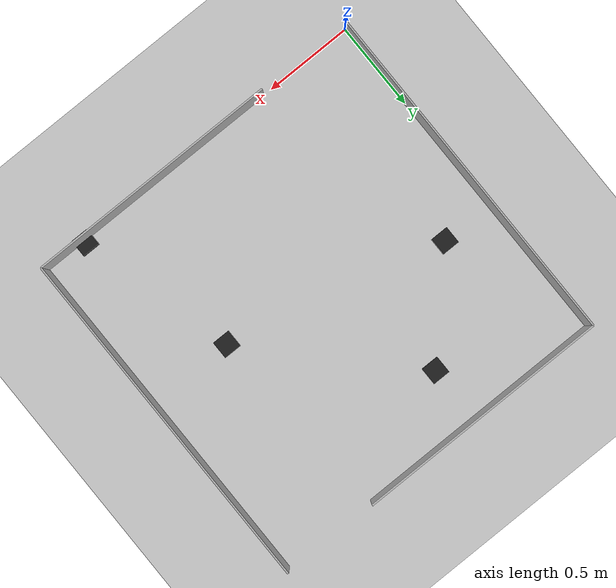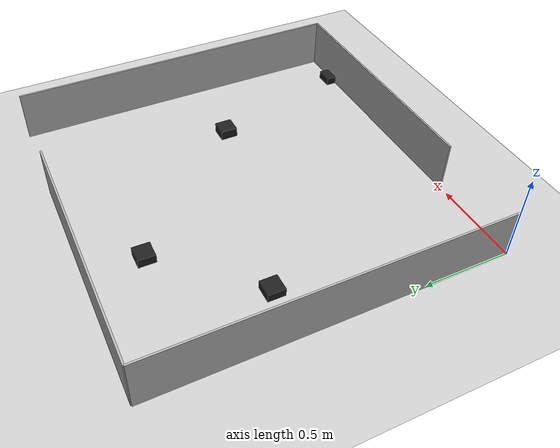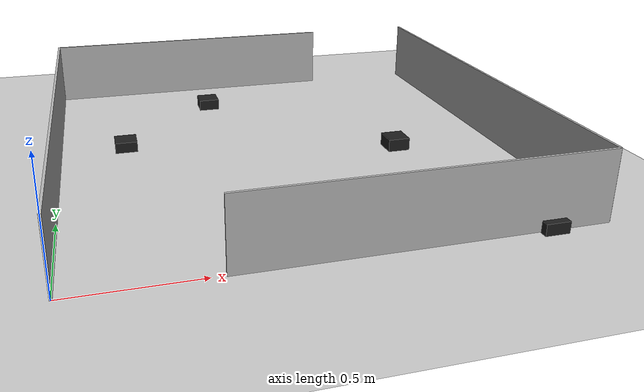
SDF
<sdf version="1.5">
 <world name="scenario_2_world">
  <include><uri>model://sun</uri></include>
  <include><uri>model://ground_plane</uri></include>
  <model name="wall_west"><include><uri>model://wall_1</uri></include></model>
  <model name="wall_east"><include><uri>model://wall_2</uri></include></model>
  <model name="wall_south"><include><uri>model://wall_3</uri></include></model>
  <model name="wall_north"><include><uri>model://wall_4</uri></include></model>
  <model name="obstacle_1">
   <pose>0.293757 1.19057 -0.004249 0 -0 0</pose>
   <include><uri>model://obstacle</uri></include>
  </model>
  <model name="obstacle_2">
   <pose>0.759152 1.6843 0.000133 0 -0 0</pose>
   <include><uri>model://obstacle</uri></include>
  </model>
  <model name="obstacle_3">
   <pose>1.51917 0.892787 0.004125 0 -0 0</pose>
   <include><uri>model://obstacle</uri></include>
  </model>
  <model name="obstacle_4">
   <pose>1.7593 0.014731 -0.004461 0 -0 0</pose>
   <include><uri>model://obstacle</uri></include>
  </model>
 </world>
</sdf>

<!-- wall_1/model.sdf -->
<sdf version="1.4">
  <model name="wall">
    <pose>0 1 0.15 0 0 0</pose>
    <static>true</static>
    <link name="link">
      <inertial>
        <mass>1.0</mass>
        <inertia> <!-- inertias are tricky to compute -->
          <!-- http://gazebosim.org/tutorials?tut=inertia&cat=build_robot -->
          <ixx>0.083</ixx>       <!-- for a box: ixx = 0.083 * mass * (y*y + z*z) -->
          <ixy>0.0</ixy>         <!-- for a box: ixy = 0 -->
          <ixz>0.0</ixz>         <!-- for a box: ixz = 0 -->
          <iyy>0.083</iyy>       <!-- for a box: iyy = 0.083 * mass * (x*x + z*z) -->
          <iyz>0.0</iyz>         <!-- for a box: iyz = 0 -->
          <izz>0.083</izz>       <!-- for a box: izz = 0.083 * mass * (x*x + y*y) -->
        </inertia>
      </inertial>
      <collision name="collision">
        <geometry>
          <box>
            <size> 0.01 2 0.3</size>
          </box>
        </geometry>
      </collision>
      <visual name="visual">
        <geometry>
          <box>
            <size>0.01 2 0.3</size>
          </box>
        </geometry>
      </visual>
    </link>
  </model>
</sdf>

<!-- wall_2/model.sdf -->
<sdf version="1.4">
  <model name="wall">
    <pose>2 1 0.15 0 0 0</pose>
    <static>true</static>
    <link name="link">
      <inertial>
        <mass>1.0</mass>
        <inertia> <!-- inertias are tricky to compute -->
          <!-- http://gazebosim.org/tutorials?tut=inertia&cat=build_robot -->
          <ixx>0.083</ixx>       <!-- for a box: ixx = 0.083 * mass * (y*y + z*z) -->
          <ixy>0.0</ixy>         <!-- for a box: ixy = 0 -->
          <ixz>0.0</ixz>         <!-- for a box: ixz = 0 -->
          <iyy>0.083</iyy>       <!-- for a box: iyy = 0.083 * mass * (x*x + z*z) -->
          <iyz>0.0</iyz>         <!-- for a box: iyz = 0 -->
          <izz>0.083</izz>       <!-- for a box: izz = 0.083 * mass * (x*x + y*y) -->
        </inertia>
      </inertial>
      <collision name="collision">
        <geometry>
          <box>
            <size> 0.01 2 0.3</size>
          </box>
        </geometry>
      </collision>
      <visual name="visual">
        <geometry>
          <box>
            <size>0.01 2 0.3</size>
          </box>
        </geometry>
      </visual>
    </link>
  </model>
</sdf>

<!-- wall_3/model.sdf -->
<sdf version="1.4">
  <model name="wall">
    <pose>1.275 0 0.15 0 0 0</pose>
    <static>true</static>
    <link name="link">
      <inertial>
        <mass>1.0</mass>
        <inertia> <!-- inertias are tricky to compute -->
          <!-- http://gazebosim.org/tutorials?tut=inertia&cat=build_robot -->
          <ixx>0.083</ixx>       <!-- for a box: ixx = 0.083 * mass * (y*y + z*z) -->
          <ixy>0.0</ixy>         <!-- for a box: ixy = 0 -->
          <ixz>0.0</ixz>         <!-- for a box: ixz = 0 -->
          <iyy>0.083</iyy>       <!-- for a box: iyy = 0.083 * mass * (x*x + z*z) -->
          <iyz>0.0</iyz>         <!-- for a box: iyz = 0 -->
          <izz>0.083</izz>       <!-- for a box: izz = 0.083 * mass * (x*x + y*y) -->
        </inertia>
      </inertial>
      <collision name="collision">
        <geometry>
          <box>
            <size>1.45 0.01 0.3</size>
          </box>
        </geometry>
      </collision>
      <visual name="visual">
        <geometry>
          <box>
            <size>1.45 0.01 0.3</size>
          </box>
        </geometry>
      </visual>
    </link>
  </model>
</sdf>

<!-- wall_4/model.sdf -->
<sdf version="1.4">
  <model name="wall">
    <pose>0.725 2 0.15 0 0 0</pose>
    <static>true</static>
    <link name="link">
      <inertial>
        <mass>1.0</mass>
        <inertia> <!-- inertias are tricky to compute -->
          <!-- http://gazebosim.org/tutorials?tut=inertia&cat=build_robot -->
          <ixx>0.083</ixx>       <!-- for a box: ixx = 0.083 * mass * (y*y + z*z) -->
          <ixy>0.0</ixy>         <!-- for a box: ixy = 0 -->
          <ixz>0.0</ixz>         <!-- for a box: ixz = 0 -->
          <iyy>0.083</iyy>       <!-- for a box: iyy = 0.083 * mass * (x*x + z*z) -->
          <iyz>0.0</iyz>         <!-- for a box: iyz = 0 -->
          <izz>0.083</izz>       <!-- for a box: izz = 0.083 * mass * (x*x + y*y) -->
        </inertia>
      </inertial>
      <collision name="collision">
        <geometry>
          <box>
            <size>1.45 0.01 0.3</size>
          </box>
        </geometry>
      </collision>
      <visual name="visual">
        <geometry>
          <box>
            <size>1.45 0.01 0.3</size>
          </box>
        </geometry>
      </visual>
    </link>
  </model>
</sdf>

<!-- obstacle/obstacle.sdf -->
<sdf version='1.7'>

  <model name='obstacle'>
    <pose>0.0 0.0 0.0 0 0 0</pose>
    <link name='link'>
      <inertial>
        <mass>1</mass>
        <inertia>
          <ixx>0.166667</ixx>
          <ixy>0</ixy>
          <ixz>0</ixz>
          <iyy>0.166667</iyy>
          <iyz>0</iyz>
          <izz>0.166667</izz>
        </inertia>
        <pose>0 0 0 0 0 0</pose>
      </inertial>

      <collision name='collision'>
        <geometry>
          <box>
            <size>0.1 0.1 0.1</size>
          </box>
        </geometry>
        <max_contacts>10</max_contacts>
        <surface>
          <contact>
            <ode/>
          </contact>
          <bounce/>
          <friction>
            <torsional>
              <ode/>
            </torsional>
            <ode/>
          </friction>
        </surface>
      </collision>

      <visual name='visual'>
        <geometry>
          <box>
            <size>0.1 0.1 0.1</size>
          </box>
        </geometry>
        <material>
          <script>
            <name>Gazebo/Black</name>
            <uri>file://media/materials/scripts/gazebo.material</uri>
          </script>
        </material>
      </visual>

      <self_collide>0</self_collide>
      <enable_wind>0</enable_wind>
      <kinematic>0</kinematic>
    </link>
  </model>

</sdf>
